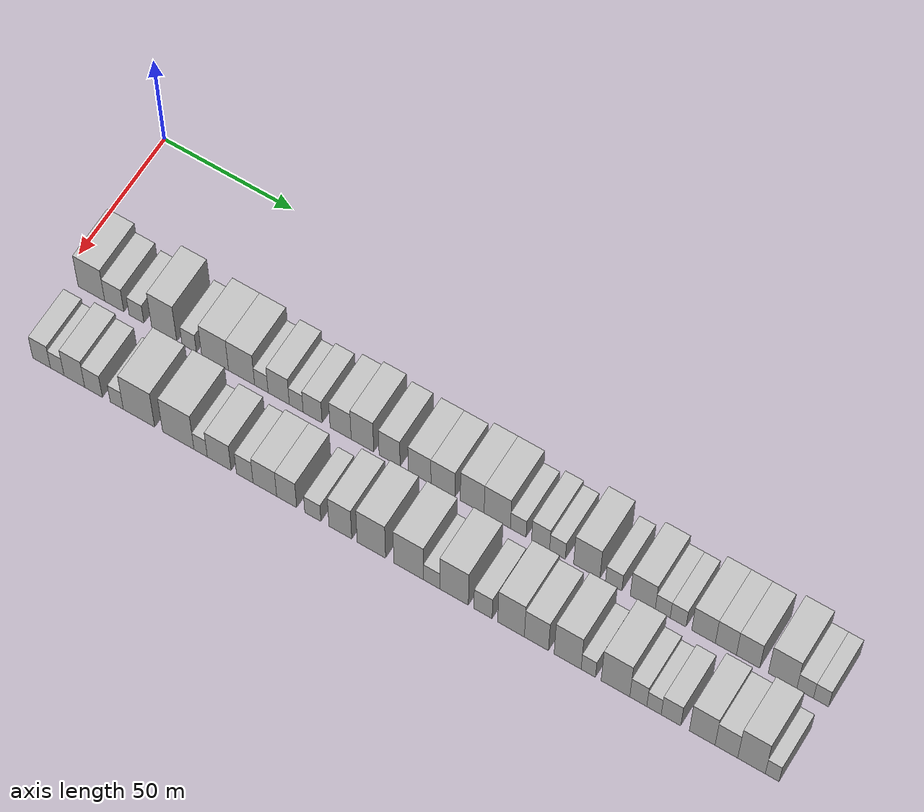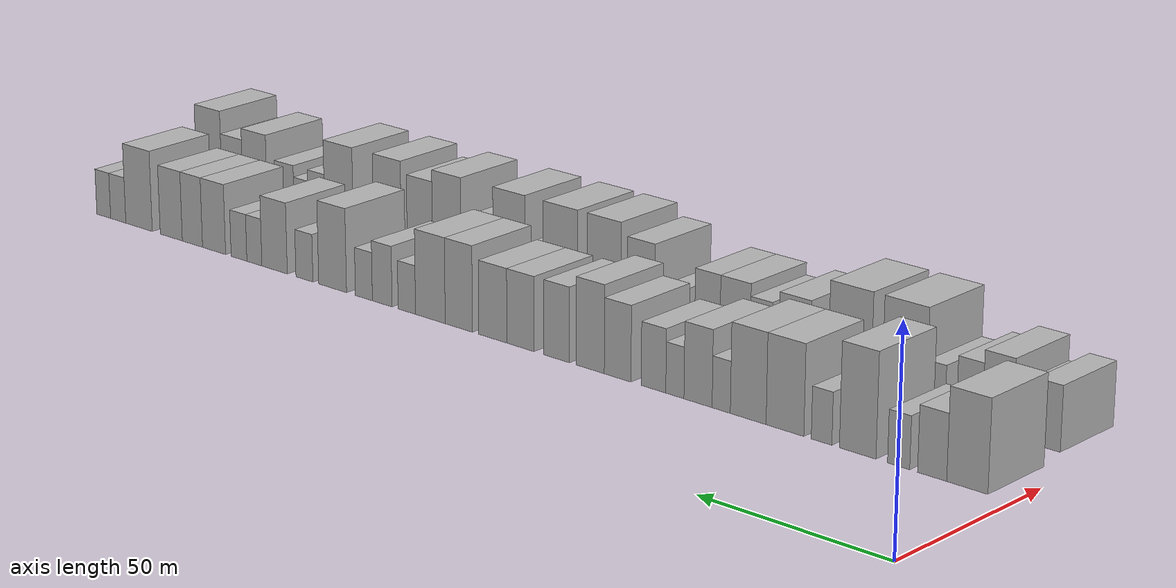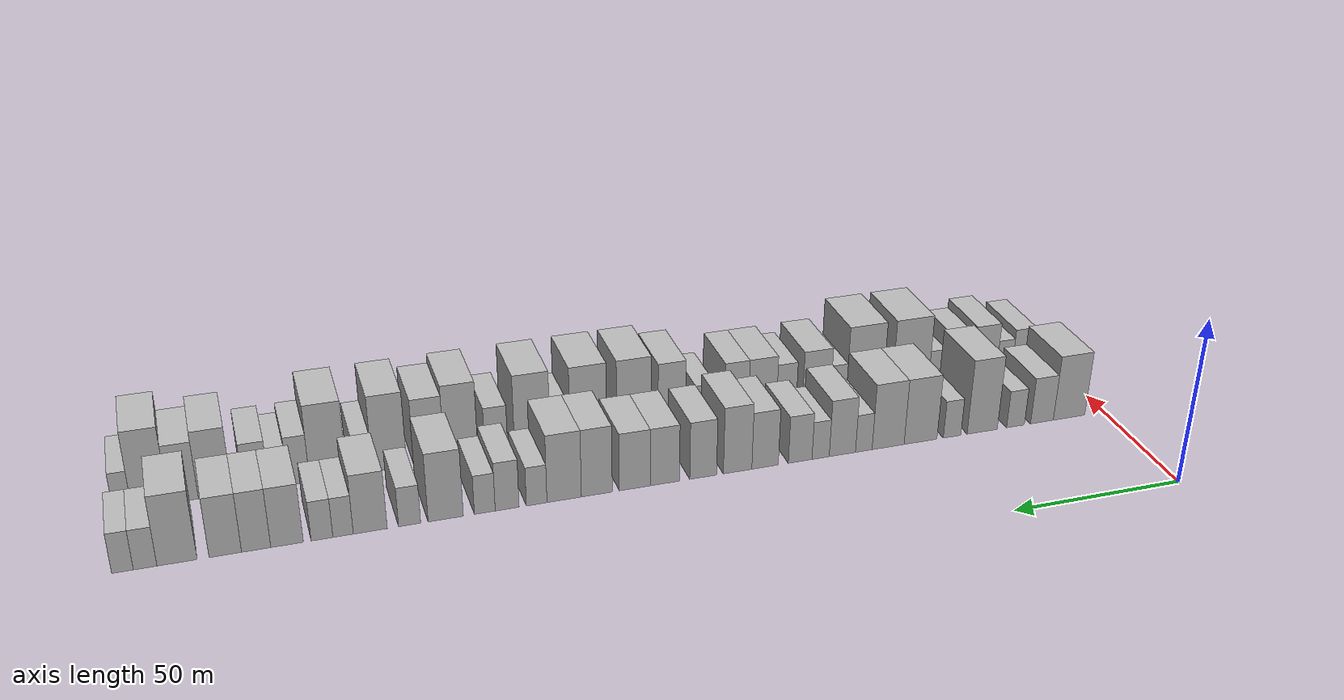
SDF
<sdf version="1.6">
 <world name="default">
  <model name="building_31">
   <static>1</static>
   <pose>50.0000 11.5053 0 0.000000 0.000000 0.000000</pose>
   <link name="link">
    <pose>0 0 10.50 0 0 0</pose>
    <collision name="collision"><geometry><box><size>20.0000 10.3172 21.0000</size></box></geometry></collision>
    <visual name="visual">
     <cast_shadows>0</cast_shadows>
     <geometry><box><size>20.0000 10.3172 21.0000</size></box></geometry>
     <material>
      <script>
       <uri>model://HANNAS_wall/materials/scripts</uri>
       <uri>model://HANNAS_wall/materials/textures</uri>
       <name>vrc/HANNAS_wall</name>
      </script>
     </material>
    </visual>
   </link>
  </model>
  <model name="building_32">
   <static>1</static>
   <pose>50.0000 20.3756 0 0.000000 0.000000 0.000000</pose>
   <link name="link">
    <pose>0 0 7.50 0 0 0</pose>
    <collision name="collision"><geometry><box><size>20.0000 7.4232 15.0000</size></box></geometry></collision>
    <visual name="visual">
     <cast_shadows>0</cast_shadows>
     <geometry><box><size>20.0000 7.4232 15.0000</size></box></geometry>
     <material>
      <script>
       <uri>model://HANNAS_wall/materials/scripts</uri>
       <uri>model://HANNAS_wall/materials/textures</uri>
       <name>vrc/HANNAS_wall</name>
      </script>
     </material>
    </visual>
   </link>
  </model>
  <model name="building_33">
   <static>1</static>
   <pose>50.0000 28.9492 0 0.000000 0.000000 0.000000</pose>
   <link name="link">
    <pose>0 0 6.00 0 0 0</pose>
    <collision name="collision"><geometry><box><size>20.0000 5.7240 12.0000</size></box></geometry></collision>
    <visual name="visual">
     <cast_shadows>0</cast_shadows>
     <geometry><box><size>20.0000 5.7240 12.0000</size></box></geometry>
     <material>
      <script>
       <uri>model://HANNAS_wall/materials/scripts</uri>
       <uri>model://HANNAS_wall/materials/textures</uri>
       <name>vrc/HANNAS_wall</name>
      </script>
     </material>
    </visual>
   </link>
  </model>
  <model name="building_34">
   <static>1</static>
   <pose>50.0000 39.6320 0 0.000000 0.000000 0.000000</pose>
   <link name="link">
    <pose>0 0 12.00 0 0 0</pose>
    <collision name="collision"><geometry><box><size>20.0000 9.6415 24.0000</size></box></geometry></collision>
    <visual name="visual">
     <cast_shadows>0</cast_shadows>
     <geometry><box><size>20.0000 9.6415 24.0000</size></box></geometry>
     <material>
      <script>
       <uri>model://HANNAS_wall/materials/scripts</uri>
       <uri>model://HANNAS_wall/materials/textures</uri>
       <name>vrc/HANNAS_wall</name>
      </script>
     </material>
    </visual>
   </link>
  </model>
  <model name="building_35">
   <static>1</static>
   <pose>50.0000 49.2087 0 0.000000 0.000000 0.000000</pose>
   <link name="link">
    <pose>0 0 6.00 0 0 0</pose>
    <collision name="collision"><geometry><box><size>20.0000 5.5118 12.0000</size></box></geometry></collision>
    <visual name="visual">
     <cast_shadows>0</cast_shadows>
     <geometry><box><size>20.0000 5.5118 12.0000</size></box></geometry>
     <material>
      <script>
       <uri>model://HANNAS_wall/materials/scripts</uri>
       <uri>model://HANNAS_wall/materials/textures</uri>
       <name>vrc/HANNAS_wall</name>
      </script>
     </material>
    </visual>
   </link>
  </model>
  <model name="building_36">
   <static>1</static>
   <pose>50.0000 59.1062 0 0.000000 0.000000 0.000000</pose>
   <link name="link">
    <pose>0 0 10.50 0 0 0</pose>
    <collision name="collision"><geometry><box><size>20.0000 10.2832 21.0000</size></box></geometry></collision>
    <visual name="visual">
     <cast_shadows>0</cast_shadows>
     <geometry><box><size>20.0000 10.2832 21.0000</size></box></geometry>
     <material>
      <script>
       <uri>model://HANNAS_wall/materials/scripts</uri>
       <uri>model://HANNAS_wall/materials/textures</uri>
       <name>vrc/HANNAS_wall</name>
      </script>
     </material>
    </visual>
   </link>
  </model>
  <model name="building_37">
   <static>1</static>
   <pose>50.0000 69.2046 0 0.000000 0.000000 0.000000</pose>
   <link name="link">
    <pose>0 0 10.50 0 0 0</pose>
    <collision name="collision"><geometry><box><size>20.0000 9.9137 21.0000</size></box></geometry></collision>
    <visual name="visual">
     <cast_shadows>0</cast_shadows>
     <geometry><box><size>20.0000 9.9137 21.0000</size></box></geometry>
     <material>
      <script>
       <uri>model://HANNAS_wall/materials/scripts</uri>
       <uri>model://HANNAS_wall/materials/textures</uri>
       <name>vrc/HANNAS_wall</name>
      </script>
     </material>
    </visual>
   </link>
  </model>
  <model name="building_38">
   <static>1</static>
   <pose>50.0000 76.7131 0 0.000000 0.000000 0.000000</pose>
   <link name="link">
    <pose>0 0 6.00 0 0 0</pose>
    <collision name="collision"><geometry><box><size>20.0000 5.1032 12.0000</size></box></geometry></collision>
    <visual name="visual">
     <cast_shadows>0</cast_shadows>
     <geometry><box><size>20.0000 5.1032 12.0000</size></box></geometry>
     <material>
      <script>
       <uri>model://HANNAS_wall/materials/scripts</uri>
       <uri>model://HANNAS_wall/materials/textures</uri>
       <name>vrc/HANNAS_wall</name>
      </script>
     </material>
    </visual>
   </link>
  </model>
  <model name="building_39">
   <static>1</static>
   <pose>50.0000 83.2646 0 0.000000 0.000000 0.000000</pose>
   <link name="link">
    <pose>0 0 9.00 0 0 0</pose>
    <collision name="collision"><geometry><box><size>20.0000 7.9998 18.0000</size></box></geometry></collision>
    <visual name="visual">
     <cast_shadows>0</cast_shadows>
     <geometry><box><size>20.0000 7.9998 18.0000</size></box></geometry>
     <material>
      <script>
       <uri>model://HANNAS_wall/materials/scripts</uri>
       <uri>model://HANNAS_wall/materials/textures</uri>
       <name>vrc/HANNAS_wall</name>
      </script>
     </material>
    </visual>
   </link>
  </model>
  <model name="building_40">
   <static>1</static>
   <pose>50.0000 89.8730 0 0.000000 0.000000 0.000000</pose>
   <link name="link">
    <pose>0 0 6.00 0 0 0</pose>
    <collision name="collision"><geometry><box><size>20.0000 5.2170 12.0000</size></box></geometry></collision>
    <visual name="visual">
     <cast_shadows>0</cast_shadows>
     <geometry><box><size>20.0000 5.2170 12.0000</size></box></geometry>
     <material>
      <script>
       <uri>model://HANNAS_wall/materials/scripts</uri>
       <uri>model://HANNAS_wall/materials/textures</uri>
       <name>vrc/HANNAS_wall</name>
      </script>
     </material>
    </visual>
   </link>
  </model>
  <model name="building_41">
   <static>1</static>
   <pose>50.0000 96.0409 0 0.000000 0.000000 0.000000</pose>
   <link name="link">
    <pose>0 0 7.50 0 0 0</pose>
    <collision name="collision"><geometry><box><size>20.0000 7.1189 15.0000</size></box></geometry></collision>
    <visual name="visual">
     <cast_shadows>0</cast_shadows>
     <geometry><box><size>20.0000 7.1189 15.0000</size></box></geometry>
     <material>
      <script>
       <uri>model://HANNAS_wall/materials/scripts</uri>
       <uri>model://HANNAS_wall/materials/textures</uri>
       <name>vrc/HANNAS_wall</name>
      </script>
     </material>
    </visual>
   </link>
  </model>
  <model name="building_42">
   <static>1</static>
   <pose>50.0000 106.5432 0 0.000000 0.000000 0.000000</pose>
   <link name="link">
    <pose>0 0 9.00 0 0 0</pose>
    <collision name="collision"><geometry><box><size>20.0000 7.8858 18.0000</size></box></geometry></collision>
    <visual name="visual">
     <cast_shadows>0</cast_shadows>
     <geometry><box><size>20.0000 7.8858 18.0000</size></box></geometry>
     <material>
      <script>
       <uri>model://HANNAS_wall/materials/scripts</uri>
       <uri>model://HANNAS_wall/materials/textures</uri>
       <name>vrc/HANNAS_wall</name>
      </script>
     </material>
    </visual>
   </link>
  </model>
  <model name="building_43">
   <static>1</static>
   <pose>50.0000 114.6918 0 0.000000 0.000000 0.000000</pose>
   <link name="link">
    <pose>0 0 10.50 0 0 0</pose>
    <collision name="collision"><geometry><box><size>20.0000 8.4112 21.0000</size></box></geometry></collision>
    <visual name="visual">
     <cast_shadows>0</cast_shadows>
     <geometry><box><size>20.0000 8.4112 21.0000</size></box></geometry>
     <material>
      <script>
       <uri>model://HANNAS_wall/materials/scripts</uri>
       <uri>model://HANNAS_wall/materials/textures</uri>
       <name>vrc/HANNAS_wall</name>
      </script>
     </material>
    </visual>
   </link>
  </model>
  <model name="building_44">
   <static>1</static>
   <pose>50.0000 124.8040 0 0.000000 0.000000 0.000000</pose>
   <link name="link">
    <pose>0 0 9.00 0 0 0</pose>
    <collision name="collision"><geometry><box><size>20.0000 7.8133 18.0000</size></box></geometry></collision>
    <visual name="visual">
     <cast_shadows>0</cast_shadows>
     <geometry><box><size>20.0000 7.8133 18.0000</size></box></geometry>
     <material>
      <script>
       <uri>model://HANNAS_wall/materials/scripts</uri>
       <uri>model://HANNAS_wall/materials/textures</uri>
       <name>vrc/HANNAS_wall</name>
      </script>
     </material>
    </visual>
   </link>
  </model>
  <model name="building_45">
   <static>1</static>
   <pose>50.0000 135.9199 0 0.000000 0.000000 0.000000</pose>
   <link name="link">
    <pose>0 0 9.00 0 0 0</pose>
    <collision name="collision"><geometry><box><size>20.0000 8.4184 18.0000</size></box></geometry></collision>
    <visual name="visual">
     <cast_shadows>0</cast_shadows>
     <geometry><box><size>20.0000 8.4184 18.0000</size></box></geometry>
     <material>
      <script>
       <uri>model://HANNAS_wall/materials/scripts</uri>
       <uri>model://HANNAS_wall/materials/textures</uri>
       <name>vrc/HANNAS_wall</name>
      </script>
     </material>
    </visual>
   </link>
  </model>
  <model name="building_46">
   <static>1</static>
   <pose>50.0000 144.5403 0 0.000000 0.000000 0.000000</pose>
   <link name="link">
    <pose>0 0 9.00 0 0 0</pose>
    <collision name="collision"><geometry><box><size>20.0000 8.8225 18.0000</size></box></geometry></collision>
    <visual name="visual">
     <cast_shadows>0</cast_shadows>
     <geometry><box><size>20.0000 8.8225 18.0000</size></box></geometry>
     <material>
      <script>
       <uri>model://HANNAS_wall/materials/scripts</uri>
       <uri>model://HANNAS_wall/materials/textures</uri>
       <name>vrc/HANNAS_wall</name>
      </script>
     </material>
    </visual>
   </link>
  </model>
  <model name="building_47">
   <static>1</static>
   <pose>50.0000 155.3123 0 0.000000 0.000000 0.000000</pose>
   <link name="link">
    <pose>0 0 10.50 0 0 0</pose>
    <collision name="collision"><geometry><box><size>20.0000 8.7214 21.0000</size></box></geometry></collision>
    <visual name="visual">
     <cast_shadows>0</cast_shadows>
     <geometry><box><size>20.0000 8.7214 21.0000</size></box></geometry>
     <material>
      <script>
       <uri>model://HANNAS_wall/materials/scripts</uri>
       <uri>model://HANNAS_wall/materials/textures</uri>
       <name>vrc/HANNAS_wall</name>
      </script>
     </material>
    </visual>
   </link>
  </model>
  <model name="building_48">
   <static>1</static>
   <pose>50.0000 164.4858 0 0.000000 0.000000 0.000000</pose>
   <link name="link">
    <pose>0 0 10.50 0 0 0</pose>
    <collision name="collision"><geometry><box><size>20.0000 9.6257 21.0000</size></box></geometry></collision>
    <visual name="visual">
     <cast_shadows>0</cast_shadows>
     <geometry><box><size>20.0000 9.6257 21.0000</size></box></geometry>
     <material>
      <script>
       <uri>model://HANNAS_wall/materials/scripts</uri>
       <uri>model://HANNAS_wall/materials/textures</uri>
       <name>vrc/HANNAS_wall</name>
      </script>
     </material>
    </visual>
   </link>
  </model>
  <model name="building_49">
   <static>1</static>
   <pose>50.0000 172.1554 0 0.000000 0.000000 0.000000</pose>
   <link name="link">
    <pose>0 0 6.00 0 0 0</pose>
    <collision name="collision"><geometry><box><size>20.0000 5.7134 12.0000</size></box></geometry></collision>
    <visual name="visual">
     <cast_shadows>0</cast_shadows>
     <geometry><box><size>20.0000 5.7134 12.0000</size></box></geometry>
     <material>
      <script>
       <uri>model://HANNAS_wall/materials/scripts</uri>
       <uri>model://HANNAS_wall/materials/textures</uri>
       <name>vrc/HANNAS_wall</name>
      </script>
     </material>
    </visual>
   </link>
  </model>
  <model name="building_50">
   <static>1</static>
   <pose>50.0000 180.2920 0 0.000000 0.000000 0.000000</pose>
   <link name="link">
    <pose>0 0 7.50 0 0 0</pose>
    <collision name="collision"><geometry><box><size>20.0000 6.5598 15.0000</size></box></geometry></collision>
    <visual name="visual">
     <cast_shadows>0</cast_shadows>
     <geometry><box><size>20.0000 6.5598 15.0000</size></box></geometry>
     <material>
      <script>
       <uri>model://HANNAS_wall/materials/scripts</uri>
       <uri>model://HANNAS_wall/materials/textures</uri>
       <name>vrc/HANNAS_wall</name>
      </script>
     </material>
    </visual>
   </link>
  </model>
  <model name="building_51">
   <static>1</static>
   <pose>50.0000 186.4201 0 0.000000 0.000000 0.000000</pose>
   <link name="link">
    <pose>0 0 6.00 0 0 0</pose>
    <collision name="collision"><geometry><box><size>20.0000 5.6963 12.0000</size></box></geometry></collision>
    <visual name="visual">
     <cast_shadows>0</cast_shadows>
     <geometry><box><size>20.0000 5.6963 12.0000</size></box></geometry>
     <material>
      <script>
       <uri>model://HANNAS_wall/materials/scripts</uri>
       <uri>model://HANNAS_wall/materials/textures</uri>
       <name>vrc/HANNAS_wall</name>
      </script>
     </material>
    </visual>
   </link>
  </model>
  <model name="building_52">
   <static>1</static>
   <pose>50.0000 197.0179 0 0.000000 0.000000 0.000000</pose>
   <link name="link">
    <pose>0 0 10.50 0 0 0</pose>
    <collision name="collision"><geometry><box><size>20.0000 9.4993 21.0000</size></box></geometry></collision>
    <visual name="visual">
     <cast_shadows>0</cast_shadows>
     <geometry><box><size>20.0000 9.4993 21.0000</size></box></geometry>
     <material>
      <script>
       <uri>model://HANNAS_wall/materials/scripts</uri>
       <uri>model://HANNAS_wall/materials/textures</uri>
       <name>vrc/HANNAS_wall</name>
      </script>
     </material>
    </visual>
   </link>
  </model>
  <model name="building_53">
   <static>1</static>
   <pose>50.0000 206.7184 0 0.000000 0.000000 0.000000</pose>
   <link name="link">
    <pose>0 0 6.00 0 0 0</pose>
    <collision name="collision"><geometry><box><size>20.0000 5.9018 12.0000</size></box></geometry></collision>
    <visual name="visual">
     <cast_shadows>0</cast_shadows>
     <geometry><box><size>20.0000 5.9018 12.0000</size></box></geometry>
     <material>
      <script>
       <uri>model://HANNAS_wall/materials/scripts</uri>
       <uri>model://HANNAS_wall/materials/textures</uri>
       <name>vrc/HANNAS_wall</name>
      </script>
     </material>
    </visual>
   </link>
  </model>
  <model name="building_54">
   <static>1</static>
   <pose>50.0000 217.1489 0 0.000000 0.000000 0.000000</pose>
   <link name="link">
    <pose>0 0 9.00 0 0 0</pose>
    <collision name="collision"><geometry><box><size>20.0000 8.9592 18.0000</size></box></geometry></collision>
    <visual name="visual">
     <cast_shadows>0</cast_shadows>
     <geometry><box><size>20.0000 8.9592 18.0000</size></box></geometry>
     <material>
      <script>
       <uri>model://HANNAS_wall/materials/scripts</uri>
       <uri>model://HANNAS_wall/materials/textures</uri>
       <name>vrc/HANNAS_wall</name>
      </script>
     </material>
    </visual>
   </link>
  </model>
  <model name="building_55">
   <static>1</static>
   <pose>50.0000 224.3023 0 0.000000 0.000000 0.000000</pose>
   <link name="link">
    <pose>0 0 6.00 0 0 0</pose>
    <collision name="collision"><geometry><box><size>20.0000 5.3476 12.0000</size></box></geometry></collision>
    <visual name="visual">
     <cast_shadows>0</cast_shadows>
     <geometry><box><size>20.0000 5.3476 12.0000</size></box></geometry>
     <material>
      <script>
       <uri>model://HANNAS_wall/materials/scripts</uri>
       <uri>model://HANNAS_wall/materials/textures</uri>
       <name>vrc/HANNAS_wall</name>
      </script>
     </material>
    </visual>
   </link>
  </model>
  <model name="building_56">
   <static>1</static>
   <pose>50.0000 229.8016 0 0.000000 0.000000 0.000000</pose>
   <link name="link">
    <pose>0 0 6.00 0 0 0</pose>
    <collision name="collision"><geometry><box><size>20.0000 5.6511 12.0000</size></box></geometry></collision>
    <visual name="visual">
     <cast_shadows>0</cast_shadows>
     <geometry><box><size>20.0000 5.6511 12.0000</size></box></geometry>
     <material>
      <script>
       <uri>model://HANNAS_wall/materials/scripts</uri>
       <uri>model://HANNAS_wall/materials/textures</uri>
       <name>vrc/HANNAS_wall</name>
      </script>
     </material>
    </visual>
   </link>
  </model>
  <model name="building_57">
   <static>1</static>
   <pose>50.0000 238.8254 0 0.000000 0.000000 0.000000</pose>
   <link name="link">
    <pose>0 0 9.00 0 0 0</pose>
    <collision name="collision"><geometry><box><size>20.0000 8.3964 18.0000</size></box></geometry></collision>
    <visual name="visual">
     <cast_shadows>0</cast_shadows>
     <geometry><box><size>20.0000 8.3964 18.0000</size></box></geometry>
     <material>
      <script>
       <uri>model://HANNAS_wall/materials/scripts</uri>
       <uri>model://HANNAS_wall/materials/textures</uri>
       <name>vrc/HANNAS_wall</name>
      </script>
     </material>
    </visual>
   </link>
  </model>
  <model name="building_58">
   <static>1</static>
   <pose>50.0000 246.7431 0 0.000000 0.000000 0.000000</pose>
   <link name="link">
    <pose>0 0 9.00 0 0 0</pose>
    <collision name="collision"><geometry><box><size>20.0000 7.4389 18.0000</size></box></geometry></collision>
    <visual name="visual">
     <cast_shadows>0</cast_shadows>
     <geometry><box><size>20.0000 7.4389 18.0000</size></box></geometry>
     <material>
      <script>
       <uri>model://HANNAS_wall/materials/scripts</uri>
       <uri>model://HANNAS_wall/materials/textures</uri>
       <name>vrc/HANNAS_wall</name>
      </script>
     </material>
    </visual>
   </link>
  </model>
  <model name="building_59">
   <static>1</static>
   <pose>50.0000 254.5801 0 0.000000 0.000000 0.000000</pose>
   <link name="link">
    <pose>0 0 9.00 0 0 0</pose>
    <collision name="collision"><geometry><box><size>20.0000 8.2352 18.0000</size></box></geometry></collision>
    <visual name="visual">
     <cast_shadows>0</cast_shadows>
     <geometry><box><size>20.0000 8.2352 18.0000</size></box></geometry>
     <material>
      <script>
       <uri>model://HANNAS_wall/materials/scripts</uri>
       <uri>model://HANNAS_wall/materials/textures</uri>
       <name>vrc/HANNAS_wall</name>
      </script>
     </material>
    </visual>
   </link>
  </model>
  <model name="building_60">
   <static>1</static>
   <pose>50.0000 266.7092 0 0.000000 0.000000 0.000000</pose>
   <link name="link">
    <pose>0 0 10.50 0 0 0</pose>
    <collision name="collision"><geometry><box><size>20.0000 10.0229 21.0000</size></box></geometry></collision>
    <visual name="visual">
     <cast_shadows>0</cast_shadows>
     <geometry><box><size>20.0000 10.0229 21.0000</size></box></geometry>
     <material>
      <script>
       <uri>model://HANNAS_wall/materials/scripts</uri>
       <uri>model://HANNAS_wall/materials/textures</uri>
       <name>vrc/HANNAS_wall</name>
      </script>
     </material>
    </visual>
   </link>
  </model>
  <model name="building_61">
   <static>1</static>
   <pose>50.0000 274.6319 0 0.000000 0.000000 0.000000</pose>
   <link name="link">
    <pose>0 0 6.00 0 0 0</pose>
    <collision name="collision"><geometry><box><size>20.0000 5.8225 12.0000</size></box></geometry></collision>
    <visual name="visual">
     <cast_shadows>0</cast_shadows>
     <geometry><box><size>20.0000 5.8225 12.0000</size></box></geometry>
     <material>
      <script>
       <uri>model://HANNAS_wall/materials/scripts</uri>
       <uri>model://HANNAS_wall/materials/textures</uri>
       <name>vrc/HANNAS_wall</name>
      </script>
     </material>
    </visual>
   </link>
  </model>
  <model name="building_62">
   <static>1</static>
   <pose>50.0000 280.2019 0 0.000000 0.000000 0.000000</pose>
   <link name="link">
    <pose>0 0 6.00 0 0 0</pose>
    <collision name="collision"><geometry><box><size>20.0000 5.3176 12.0000</size></box></geometry></collision>
    <visual name="visual">
     <cast_shadows>0</cast_shadows>
     <geometry><box><size>20.0000 5.3176 12.0000</size></box></geometry>
     <material>
      <script>
       <uri>model://HANNAS_wall/materials/scripts</uri>
       <uri>model://HANNAS_wall/materials/textures</uri>
       <name>vrc/HANNAS_wall</name>
      </script>
     </material>
    </visual>
   </link>
  </model>
  <model name="building_96">
   <static>1</static>
   <pose>79.0000 11.8261 0 0.000000 0.000000 0.000000</pose>
   <link name="link">
    <pose>0 0 7.50 0 0 0</pose>
    <collision name="collision"><geometry><box><size>20.0000 6.8440 15.0000</size></box></geometry></collision>
    <visual name="visual">
     <cast_shadows>0</cast_shadows>
     <geometry><box><size>20.0000 6.8440 15.0000</size></box></geometry>
     <material>
      <script>
       <uri>model://HANNAS_wall/materials/scripts</uri>
       <uri>model://HANNAS_wall/materials/textures</uri>
       <name>vrc/HANNAS_wall</name>
      </script>
     </material>
    </visual>
   </link>
  </model>
  <model name="building_97">
   <static>1</static>
   <pose>79.0000 17.8728 0 0.000000 0.000000 0.000000</pose>
   <link name="link">
    <pose>0 0 6.00 0 0 0</pose>
    <collision name="collision"><geometry><box><size>20.0000 5.2494 12.0000</size></box></geometry></collision>
    <visual name="visual">
     <cast_shadows>0</cast_shadows>
     <geometry><box><size>20.0000 5.2494 12.0000</size></box></geometry>
     <material>
      <script>
       <uri>model://HANNAS_wall/materials/scripts</uri>
       <uri>model://HANNAS_wall/materials/textures</uri>
       <name>vrc/HANNAS_wall</name>
      </script>
     </material>
    </visual>
   </link>
  </model>
  <model name="building_98">
   <static>1</static>
   <pose>79.0000 24.4730 0 0.000000 0.000000 0.000000</pose>
   <link name="link">
    <pose>0 0 9.00 0 0 0</pose>
    <collision name="collision"><geometry><box><size>20.0000 7.9508 18.0000</size></box></geometry></collision>
    <visual name="visual">
     <cast_shadows>0</cast_shadows>
     <geometry><box><size>20.0000 7.9508 18.0000</size></box></geometry>
     <material>
      <script>
       <uri>model://HANNAS_wall/materials/scripts</uri>
       <uri>model://HANNAS_wall/materials/textures</uri>
       <name>vrc/HANNAS_wall</name>
      </script>
     </material>
    </visual>
   </link>
  </model>
  <model name="building_99">
   <static>1</static>
   <pose>79.0000 31.8317 0 0.000000 0.000000 0.000000</pose>
   <link name="link">
    <pose>0 0 7.50 0 0 0</pose>
    <collision name="collision"><geometry><box><size>20.0000 6.7667 15.0000</size></box></geometry></collision>
    <visual name="visual">
     <cast_shadows>0</cast_shadows>
     <geometry><box><size>20.0000 6.7667 15.0000</size></box></geometry>
     <material>
      <script>
       <uri>model://HANNAS_wall/materials/scripts</uri>
       <uri>model://HANNAS_wall/materials/textures</uri>
       <name>vrc/HANNAS_wall</name>
      </script>
     </material>
    </visual>
   </link>
  </model>
  <model name="building_100">
   <static>1</static>
   <pose>79.0000 40.7117 0 0.000000 0.000000 0.000000</pose>
   <link name="link">
    <pose>0 0 6.00 0 0 0</pose>
    <collision name="collision"><geometry><box><size>20.0000 4.9932 12.0000</size></box></geometry></collision>
    <visual name="visual">
     <cast_shadows>0</cast_shadows>
     <geometry><box><size>20.0000 4.9932 12.0000</size></box></geometry>
     <material>
      <script>
       <uri>model://HANNAS_wall/materials/scripts</uri>
       <uri>model://HANNAS_wall/materials/textures</uri>
       <name>vrc/HANNAS_wall</name>
      </script>
     </material>
    </visual>
   </link>
  </model>
  <model name="building_101">
   <static>1</static>
   <pose>79.0000 49.1910 0 0.000000 0.000000 0.000000</pose>
   <link name="link">
    <pose>0 0 12.00 0 0 0</pose>
    <collision name="collision"><geometry><box><size>20.0000 11.9653 24.0000</size></box></geometry></collision>
    <visual name="visual">
     <cast_shadows>0</cast_shadows>
     <geometry><box><size>20.0000 11.9653 24.0000</size></box></geometry>
     <material>
      <script>
       <uri>model://HANNAS_wall/materials/scripts</uri>
       <uri>model://HANNAS_wall/materials/textures</uri>
       <name>vrc/HANNAS_wall</name>
      </script>
     </material>
    </visual>
   </link>
  </model>
  <model name="building_102">
   <static>1</static>
   <pose>79.0000 64.1065 0 0.000000 0.000000 0.000000</pose>
   <link name="link">
    <pose>0 0 12.00 0 0 0</pose>
    <collision name="collision"><geometry><box><size>20.0000 11.8658 24.0000</size></box></geometry></collision>
    <visual name="visual">
     <cast_shadows>0</cast_shadows>
     <geometry><box><size>20.0000 11.8658 24.0000</size></box></geometry>
     <material>
      <script>
       <uri>model://HANNAS_wall/materials/scripts</uri>
       <uri>model://HANNAS_wall/materials/textures</uri>
       <name>vrc/HANNAS_wall</name>
      </script>
     </material>
    </visual>
   </link>
  </model>
  <model name="building_103">
   <static>1</static>
   <pose>79.0000 72.5562 0 0.000000 0.000000 0.000000</pose>
   <link name="link">
    <pose>0 0 6.00 0 0 0</pose>
    <collision name="collision"><geometry><box><size>20.0000 5.0336 12.0000</size></box></geometry></collision>
    <visual name="visual">
     <cast_shadows>0</cast_shadows>
     <geometry><box><size>20.0000 5.0336 12.0000</size></box></geometry>
     <material>
      <script>
       <uri>model://HANNAS_wall/materials/scripts</uri>
       <uri>model://HANNAS_wall/materials/textures</uri>
       <name>vrc/HANNAS_wall</name>
      </script>
     </material>
    </visual>
   </link>
  </model>
  <model name="building_104">
   <static>1</static>
   <pose>79.0000 79.5535 0 0.000000 0.000000 0.000000</pose>
   <link name="link">
    <pose>0 0 9.00 0 0 0</pose>
    <collision name="collision"><geometry><box><size>20.0000 8.9610 18.0000</size></box></geometry></collision>
    <visual name="visual">
     <cast_shadows>0</cast_shadows>
     <geometry><box><size>20.0000 8.9610 18.0000</size></box></geometry>
     <material>
      <script>
       <uri>model://HANNAS_wall/materials/scripts</uri>
       <uri>model://HANNAS_wall/materials/textures</uri>
       <name>vrc/HANNAS_wall</name>
      </script>
     </material>
    </visual>
   </link>
  </model>
  <model name="building_105">
   <static>1</static>
   <pose>79.0000 89.1423 0 0.000000 0.000000 0.000000</pose>
   <link name="link">
    <pose>0 0 7.50 0 0 0</pose>
    <collision name="collision"><geometry><box><size>20.0000 6.2166 15.0000</size></box></geometry></collision>
    <visual name="visual">
     <cast_shadows>0</cast_shadows>
     <geometry><box><size>20.0000 6.2166 15.0000</size></box></geometry>
     <material>
      <script>
       <uri>model://HANNAS_wall/materials/scripts</uri>
       <uri>model://HANNAS_wall/materials/textures</uri>
       <name>vrc/HANNAS_wall</name>
      </script>
     </material>
    </visual>
   </link>
  </model>
  <model name="building_106">
   <static>1</static>
   <pose>79.0000 96.6588 0 0.000000 0.000000 0.000000</pose>
   <link name="link">
    <pose>0 0 9.00 0 0 0</pose>
    <collision name="collision"><geometry><box><size>20.0000 8.8164 18.0000</size></box></geometry></collision>
    <visual name="visual">
     <cast_shadows>0</cast_shadows>
     <geometry><box><size>20.0000 8.8164 18.0000</size></box></geometry>
     <material>
      <script>
       <uri>model://HANNAS_wall/materials/scripts</uri>
       <uri>model://HANNAS_wall/materials/textures</uri>
       <name>vrc/HANNAS_wall</name>
      </script>
     </material>
    </visual>
   </link>
  </model>
  <model name="building_107">
   <static>1</static>
   <pose>79.0000 104.8072 0 0.000000 0.000000 0.000000</pose>
   <link name="link">
    <pose>0 0 9.00 0 0 0</pose>
    <collision name="collision"><geometry><box><size>20.0000 7.4803 18.0000</size></box></geometry></collision>
    <visual name="visual">
     <cast_shadows>0</cast_shadows>
     <geometry><box><size>20.0000 7.4803 18.0000</size></box></geometry>
     <material>
      <script>
       <uri>model://HANNAS_wall/materials/scripts</uri>
       <uri>model://HANNAS_wall/materials/textures</uri>
       <name>vrc/HANNAS_wall</name>
      </script>
     </material>
    </visual>
   </link>
  </model>
  <model name="building_108">
   <static>1</static>
   <pose>79.0000 114.5395 0 0.000000 0.000000 0.000000</pose>
   <link name="link">
    <pose>0 0 6.00 0 0 0</pose>
    <collision name="collision"><geometry><box><size>20.0000 5.9842 12.0000</size></box></geometry></collision>
    <visual name="visual">
     <cast_shadows>0</cast_shadows>
     <geometry><box><size>20.0000 5.9842 12.0000</size></box></geometry>
     <material>
      <script>
       <uri>model://HANNAS_wall/materials/scripts</uri>
       <uri>model://HANNAS_wall/materials/textures</uri>
       <name>vrc/HANNAS_wall</name>
      </script>
     </material>
    </visual>
   </link>
  </model>
  <model name="building_109">
   <static>1</static>
   <pose>79.0000 124.7380 0 0.000000 0.000000 0.000000</pose>
   <link name="link">
    <pose>0 0 10.50 0 0 0</pose>
    <collision name="collision"><geometry><box><size>20.0000 8.4130 21.0000</size></box></geometry></collision>
    <visual name="visual">
     <cast_shadows>0</cast_shadows>
     <geometry><box><size>20.0000 8.4130 21.0000</size></box></geometry>
     <material>
      <script>
       <uri>model://HANNAS_wall/materials/scripts</uri>
       <uri>model://HANNAS_wall/materials/textures</uri>
       <name>vrc/HANNAS_wall</name>
      </script>
     </material>
    </visual>
   </link>
  </model>
  <model name="building_110">
   <static>1</static>
   <pose>79.0000 136.1687 0 0.000000 0.000000 0.000000</pose>
   <link name="link">
    <pose>0 0 12.00 0 0 0</pose>
    <collision name="collision"><geometry><box><size>20.0000 10.4484 24.0000</size></box></geometry></collision>
    <visual name="visual">
     <cast_shadows>0</cast_shadows>
     <geometry><box><size>20.0000 10.4484 24.0000</size></box></geometry>
     <material>
      <script>
       <uri>model://HANNAS_wall/materials/scripts</uri>
       <uri>model://HANNAS_wall/materials/textures</uri>
       <name>vrc/HANNAS_wall</name>
      </script>
     </material>
    </visual>
   </link>
  </model>
  <model name="building_111">
   <static>1</static>
   <pose>79.0000 149.8467 0 0.000000 0.000000 0.000000</pose>
   <link name="link">
    <pose>0 0 12.00 0 0 0</pose>
    <collision name="collision"><geometry><box><size>20.0000 10.9076 24.0000</size></box></geometry></collision>
    <visual name="visual">
     <cast_shadows>0</cast_shadows>
     <geometry><box><size>20.0000 10.9076 24.0000</size></box></geometry>
     <material>
      <script>
       <uri>model://HANNAS_wall/materials/scripts</uri>
       <uri>model://HANNAS_wall/materials/textures</uri>
       <name>vrc/HANNAS_wall</name>
      </script>
     </material>
    </visual>
   </link>
  </model>
  <model name="building_112">
   <static>1</static>
   <pose>79.0000 158.2394 0 0.000000 0.000000 0.000000</pose>
   <link name="link">
    <pose>0 0 6.00 0 0 0</pose>
    <collision name="collision"><geometry><box><size>20.0000 5.8779 12.0000</size></box></geometry></collision>
    <visual name="visual">
     <cast_shadows>0</cast_shadows>
     <geometry><box><size>20.0000 5.8779 12.0000</size></box></geometry>
     <material>
      <script>
       <uri>model://HANNAS_wall/materials/scripts</uri>
       <uri>model://HANNAS_wall/materials/textures</uri>
       <name>vrc/HANNAS_wall</name>
      </script>
     </material>
    </visual>
   </link>
  </model>
  <model name="building_113">
   <static>1</static>
   <pose>79.0000 166.3746 0 0.000000 0.000000 0.000000</pose>
   <link name="link">
    <pose>0 0 12.00 0 0 0</pose>
    <collision name="collision"><geometry><box><size>20.0000 10.3924 24.0000</size></box></geometry></collision>
    <visual name="visual">
     <cast_shadows>0</cast_shadows>
     <geometry><box><size>20.0000 10.3924 24.0000</size></box></geometry>
     <material>
      <script>
       <uri>model://HANNAS_wall/materials/scripts</uri>
       <uri>model://HANNAS_wall/materials/textures</uri>
       <name>vrc/HANNAS_wall</name>
      </script>
     </material>
    </visual>
   </link>
  </model>
  <model name="building_114">
   <static>1</static>
   <pose>79.0000 176.8716 0 0.000000 0.000000 0.000000</pose>
   <link name="link">
    <pose>0 0 7.50 0 0 0</pose>
    <collision name="collision"><geometry><box><size>20.0000 6.6016 15.0000</size></box></geometry></collision>
    <visual name="visual">
     <cast_shadows>0</cast_shadows>
     <geometry><box><size>20.0000 6.6016 15.0000</size></box></geometry>
     <material>
      <script>
       <uri>model://HANNAS_wall/materials/scripts</uri>
       <uri>model://HANNAS_wall/materials/textures</uri>
       <name>vrc/HANNAS_wall</name>
      </script>
     </material>
    </visual>
   </link>
  </model>
  <model name="building_115">
   <static>1</static>
   <pose>79.0000 186.9847 0 0.000000 0.000000 0.000000</pose>
   <link name="link">
    <pose>0 0 12.00 0 0 0</pose>
    <collision name="collision"><geometry><box><size>20.0000 9.6245 24.0000</size></box></geometry></collision>
    <visual name="visual">
     <cast_shadows>0</cast_shadows>
     <geometry><box><size>20.0000 9.6245 24.0000</size></box></geometry>
     <material>
      <script>
       <uri>model://HANNAS_wall/materials/scripts</uri>
       <uri>model://HANNAS_wall/materials/textures</uri>
       <name>vrc/HANNAS_wall</name>
      </script>
     </material>
    </visual>
   </link>
  </model>
  <model name="building_116">
   <static>1</static>
   <pose>79.0000 196.1254 0 0.000000 0.000000 0.000000</pose>
   <link name="link">
    <pose>0 0 10.50 0 0 0</pose>
    <collision name="collision"><geometry><box><size>20.0000 8.6568 21.0000</size></box></geometry></collision>
    <visual name="visual">
     <cast_shadows>0</cast_shadows>
     <geometry><box><size>20.0000 8.6568 21.0000</size></box></geometry>
     <material>
      <script>
       <uri>model://HANNAS_wall/materials/scripts</uri>
       <uri>model://HANNAS_wall/materials/textures</uri>
       <name>vrc/HANNAS_wall</name>
      </script>
     </material>
    </visual>
   </link>
  </model>
  <model name="building_117">
   <static>1</static>
   <pose>79.0000 207.2841 0 0.000000 0.000000 0.000000</pose>
   <link name="link">
    <pose>0 0 12.00 0 0 0</pose>
    <collision name="collision"><geometry><box><size>20.0000 9.6606 24.0000</size></box></geometry></collision>
    <visual name="visual">
     <cast_shadows>0</cast_shadows>
     <geometry><box><size>20.0000 9.6606 24.0000</size></box></geometry>
     <material>
      <script>
       <uri>model://HANNAS_wall/materials/scripts</uri>
       <uri>model://HANNAS_wall/materials/textures</uri>
       <name>vrc/HANNAS_wall</name>
      </script>
     </material>
    </visual>
   </link>
  </model>
  <model name="building_118">
   <static>1</static>
   <pose>79.0000 214.6705 0 0.000000 0.000000 0.000000</pose>
   <link name="link">
    <pose>0 0 6.00 0 0 0</pose>
    <collision name="collision"><geometry><box><size>20.0000 5.1121 12.0000</size></box></geometry></collision>
    <visual name="visual">
     <cast_shadows>0</cast_shadows>
     <geometry><box><size>20.0000 5.1121 12.0000</size></box></geometry>
     <material>
      <script>
       <uri>model://HANNAS_wall/materials/scripts</uri>
       <uri>model://HANNAS_wall/materials/textures</uri>
       <name>vrc/HANNAS_wall</name>
      </script>
     </material>
    </visual>
   </link>
  </model>
  <model name="building_119">
   <static>1</static>
   <pose>79.0000 224.3188 0 0.000000 0.000000 0.000000</pose>
   <link name="link">
    <pose>0 0 12.00 0 0 0</pose>
    <collision name="collision"><geometry><box><size>20.0000 10.1844 24.0000</size></box></geometry></collision>
    <visual name="visual">
     <cast_shadows>0</cast_shadows>
     <geometry><box><size>20.0000 10.1844 24.0000</size></box></geometry>
     <material>
      <script>
       <uri>model://HANNAS_wall/materials/scripts</uri>
       <uri>model://HANNAS_wall/materials/textures</uri>
       <name>vrc/HANNAS_wall</name>
      </script>
     </material>
    </visual>
   </link>
  </model>
  <model name="building_120">
   <static>1</static>
   <pose>79.0000 232.4200 0 0.000000 0.000000 0.000000</pose>
   <link name="link">
    <pose>0 0 7.50 0 0 0</pose>
    <collision name="collision"><geometry><box><size>20.0000 6.0179 15.0000</size></box></geometry></collision>
    <visual name="visual">
     <cast_shadows>0</cast_shadows>
     <geometry><box><size>20.0000 6.0179 15.0000</size></box></geometry>
     <material>
      <script>
       <uri>model://HANNAS_wall/materials/scripts</uri>
       <uri>model://HANNAS_wall/materials/textures</uri>
       <name>vrc/HANNAS_wall</name>
      </script>
     </material>
    </visual>
   </link>
  </model>
  <model name="building_121">
   <static>1</static>
   <pose>79.0000 237.9735 0 0.000000 0.000000 0.000000</pose>
   <link name="link">
    <pose>0 0 6.00 0 0 0</pose>
    <collision name="collision"><geometry><box><size>20.0000 5.0893 12.0000</size></box></geometry></collision>
    <visual name="visual">
     <cast_shadows>0</cast_shadows>
     <geometry><box><size>20.0000 5.0893 12.0000</size></box></geometry>
     <material>
      <script>
       <uri>model://HANNAS_wall/materials/scripts</uri>
       <uri>model://HANNAS_wall/materials/textures</uri>
       <name>vrc/HANNAS_wall</name>
      </script>
     </material>
    </visual>
   </link>
  </model>
  <model name="building_122">
   <static>1</static>
   <pose>79.0000 243.9616 0 0.000000 0.000000 0.000000</pose>
   <link name="link">
    <pose>0 0 7.50 0 0 0</pose>
    <collision name="collision"><geometry><box><size>20.0000 6.8869 15.0000</size></box></geometry></collision>
    <visual name="visual">
     <cast_shadows>0</cast_shadows>
     <geometry><box><size>20.0000 6.8869 15.0000</size></box></geometry>
     <material>
      <script>
       <uri>model://HANNAS_wall/materials/scripts</uri>
       <uri>model://HANNAS_wall/materials/textures</uri>
       <name>vrc/HANNAS_wall</name>
      </script>
     </material>
    </visual>
   </link>
  </model>
  <model name="building_123">
   <static>1</static>
   <pose>79.0000 254.9158 0 0.000000 0.000000 0.000000</pose>
   <link name="link">
    <pose>0 0 10.50 0 0 0</pose>
    <collision name="collision"><geometry><box><size>20.0000 9.0216 21.0000</size></box></geometry></collision>
    <visual name="visual">
     <cast_shadows>0</cast_shadows>
     <geometry><box><size>20.0000 9.0216 21.0000</size></box></geometry>
     <material>
      <script>
       <uri>model://HANNAS_wall/materials/scripts</uri>
       <uri>model://HANNAS_wall/materials/textures</uri>
       <name>vrc/HANNAS_wall</name>
      </script>
     </material>
    </visual>
   </link>
  </model>
  <model name="building_124">
   <static>1</static>
   <pose>79.0000 263.3810 0 0.000000 0.000000 0.000000</pose>
   <link name="link">
    <pose>0 0 9.00 0 0 0</pose>
    <collision name="collision"><geometry><box><size>20.0000 7.9087 18.0000</size></box></geometry></collision>
    <visual name="visual">
     <cast_shadows>0</cast_shadows>
     <geometry><box><size>20.0000 7.9087 18.0000</size></box></geometry>
     <material>
      <script>
       <uri>model://HANNAS_wall/materials/scripts</uri>
       <uri>model://HANNAS_wall/materials/textures</uri>
       <name>vrc/HANNAS_wall</name>
      </script>
     </material>
    </visual>
   </link>
  </model>
  <model name="building_125">
   <static>1</static>
   <pose>79.0000 272.1402 0 0.000000 0.000000 0.000000</pose>
   <link name="link">
    <pose>0 0 12.00 0 0 0</pose>
    <collision name="collision"><geometry><box><size>20.0000 9.6097 24.0000</size></box></geometry></collision>
    <visual name="visual">
     <cast_shadows>0</cast_shadows>
     <geometry><box><size>20.0000 9.6097 24.0000</size></box></geometry>
     <material>
      <script>
       <uri>model://HANNAS_wall/materials/scripts</uri>
       <uri>model://HANNAS_wall/materials/textures</uri>
       <name>vrc/HANNAS_wall</name>
      </script>
     </material>
    </visual>
   </link>
  </model>
  <model name="building_126">
   <static>1</static>
   <pose>79.0000 279.3499 0 0.000000 0.000000 0.000000</pose>
   <link name="link">
    <pose>0 0 6.00 0 0 0</pose>
    <collision name="collision"><geometry><box><size>20.0000 4.8098 12.0000</size></box></geometry></collision>
    <visual name="visual">
     <cast_shadows>0</cast_shadows>
     <geometry><box><size>20.0000 4.8098 12.0000</size></box></geometry>
     <material>
      <script>
       <uri>model://HANNAS_wall/materials/scripts</uri>
       <uri>model://HANNAS_wall/materials/textures</uri>
       <name>vrc/HANNAS_wall</name>
      </script>
     </material>
    </visual>
   </link>
  </model>
 </world>
</sdf>
